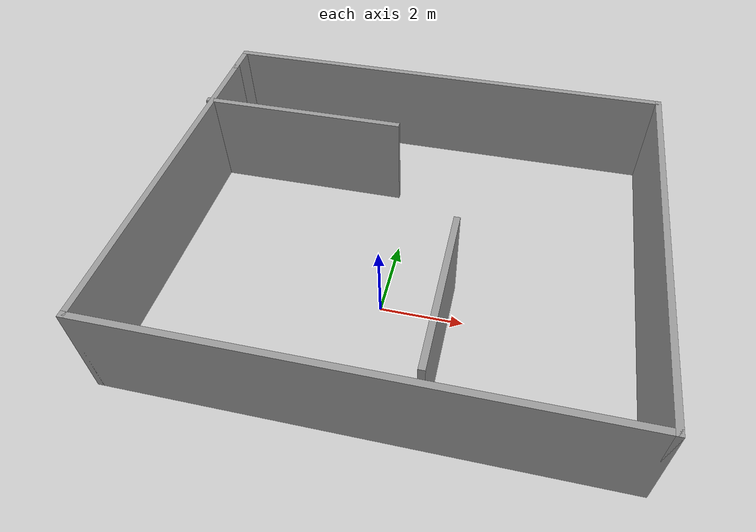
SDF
<?xml version='1.0'?>
<sdf version='1.7'>
  <model name='team_1_room'>
    <pose>0.239581 1.55261 0 0 -0 0</pose>
    <link name='Wall_11'>
      <collision name='Wall_11_Collision'>
        <geometry>
          <box>
            <size>5.25 0.15 2.5</size>
          </box>
        </geometry>
        <pose>0 0 1.25 0 -0 0</pose>
      </collision>
      <visual name='Wall_11_Visual'>
        <pose>0 0 1.25 0 -0 0</pose>
        <geometry>
          <box>
            <size>5.25 0.15 2.5</size>
          </box>
        </geometry>
        <material>
          <script>
            <uri>file://media/materials/scripts/gazebo.material</uri>
            <name>Gazebo/Grey</name>
          </script>
          <ambient>1 1 1 1</ambient>
        </material>
        <meta>
          <layer>0</layer>
        </meta>
      </visual>
      <pose>-3.28799 2.4193 0 0 -0 0</pose>
    </link>
    <link name='Wall_13'>
      <collision name='Wall_13_Collision'>
        <geometry>
          <box>
            <size>4 0.15 2.5</size>
          </box>
        </geometry>
        <pose>0 0 1.25 0 -0 0</pose>
      </collision>
      <visual name='Wall_13_Visual'>
        <pose>0 0 1.25 0 -0 0</pose>
        <geometry>
          <box>
            <size>4 0.15 2.5</size>
          </box>
        </geometry>
        <material>
          <script>
            <uri>file://media/materials/scripts/gazebo.material</uri>
            <name>Gazebo/Grey</name>
          </script>
          <ambient>1 1 1 1</ambient>
        </material>
        <meta>
          <layer>0</layer>
        </meta>
      </visual>
      <pose>1.32265 -2.53315 0 0 -0 1.5708</pose>
    </link>
    <link name='Wall_5'>
      <collision name='Wall_5_Collision'>
        <geometry>
          <box>
            <size>0.75 0.15 2.5</size>
          </box>
        </geometry>
        <pose>0 0 1.25 0 -0 0</pose>
      </collision>
      <visual name='Wall_5_Visual'>
        <pose>0 0 1.25 0 -0 0</pose>
        <geometry>
          <box>
            <size>0.75 0.15 2.5</size>
          </box>
        </geometry>
        <material>
          <script>
            <uri>file://media/materials/scripts/gazebo.material</uri>
            <name>Gazebo/Grey</name>
          </script>
          <ambient>1 1 1 1</ambient>
        </material>
        <meta>
          <layer>0</layer>
        </meta>
      </visual>
      <pose>-5.76201 4.35 0 0 -0 -1.5708</pose>
    </link>
    <link name='Wall_6'>
      <collision name='Wall_6_Collision'>
        <geometry>
          <box>
            <size>9 0.15 2.5</size>
          </box>
        </geometry>
        <pose>0 0 1.25 0 -0 0</pose>
      </collision>
      <visual name='Wall_6_Visual'>
        <pose>0 0 1.25 0 -0 0</pose>
        <geometry>
          <box>
            <size>9 0.15 2.5</size>
          </box>
        </geometry>
        <material>
          <script>
            <uri>file://media/materials/scripts/gazebo.material</uri>
            <name>Gazebo/Grey</name>
          </script>
          <ambient>1 1 1 1</ambient>
        </material>
        <meta>
          <layer>0</layer>
        </meta>
      </visual>
      <pose>-5.76201 -0.375 0 0 -0 -1.5708</pose>
    </link>
    <link name='Wall_7'>
      <collision name='Wall_7_Collision'>
        <geometry>
          <box>
            <size>11.75 0.15 2.5</size>
          </box>
        </geometry>
        <pose>0 0 1.25 0 -0 0</pose>
      </collision>
      <visual name='Wall_7_Visual'>
        <pose>0 0 1.25 0 -0 0</pose>
        <geometry>
          <box>
            <size>11.75 0.15 2.5</size>
          </box>
        </geometry>
        <material>
          <script>
            <uri>file://media/materials/scripts/gazebo.material</uri>
            <name>Gazebo/Grey</name>
          </script>
          <ambient>1 1 1 1</ambient>
        </material>
        <meta>
          <layer>0</layer>
        </meta>
      </visual>
      <pose>0.037992 -4.8 0 0 -0 0</pose>
    </link>
    <link name='Wall_8'>
      <collision name='Wall_8_Collision'>
        <geometry>
          <box>
            <size>9.75 0.15 2.5</size>
          </box>
        </geometry>
        <pose>0 0 1.25 0 -0 0</pose>
      </collision>
      <visual name='Wall_8_Visual'>
        <pose>0 0 1.25 0 -0 0</pose>
        <geometry>
          <box>
            <size>9.75 0.15 2.5</size>
          </box>
        </geometry>
        <material>
          <script>
            <uri>file://media/materials/scripts/gazebo.material</uri>
            <name>Gazebo/Grey</name>
          </script>
          <ambient>1 1 1 1</ambient>
        </material>
        <meta>
          <layer>0</layer>
        </meta>
      </visual>
      <pose>5.83799 -0 0 0 -0 1.5708</pose>
    </link>
    <link name='Wall_9'>
      <collision name='Wall_9_Collision'>
        <geometry>
          <box>
            <size>11.75 0.15 2.5</size>
          </box>
        </geometry>
        <pose>0 0 1.25 0 -0 0</pose>
      </collision>
      <visual name='Wall_9_Visual'>
        <pose>0 0 1.25 0 -0 0</pose>
        <geometry>
          <box>
            <size>11.75 0.15 2.5</size>
          </box>
        </geometry>
        <material>
          <script>
            <uri>file://media/materials/scripts/gazebo.material</uri>
            <name>Gazebo/Grey</name>
          </script>
          <ambient>1 1 1 1</ambient>
        </material>
        <meta>
          <layer>0</layer>
        </meta>
      </visual>
      <pose>0.037992 4.8 0 0 -0 3.14159</pose>
    </link>
    <static>1</static>
  </model>
</sdf>
